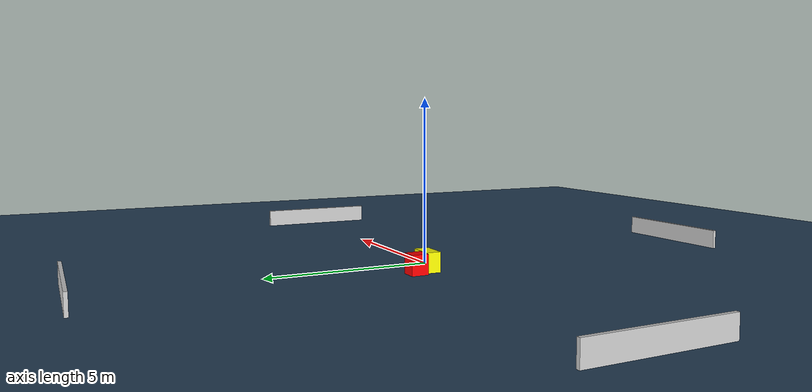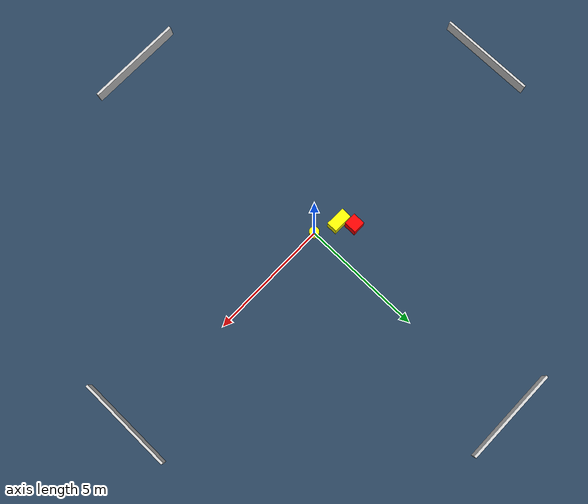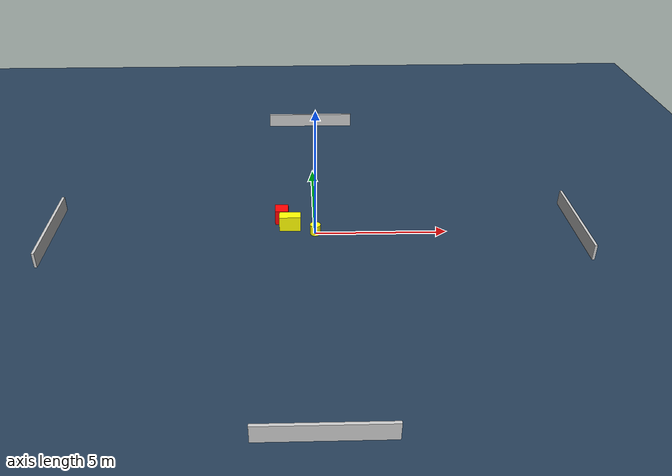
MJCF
<?xml version="1.0" ?>
<mujoco model="generated_environment">
  <option timestep="0.01" integrator="RK4" cone="elliptic"/>
  <default>
    <geom density="1"/>
  </default>
  <asset>
    <texture builtin="gradient" height="3072" name="skybox" rgb1="0.3 0.5 0.7" rgb2="0 0 0" type="skybox" width="512"/>
    <texture builtin="checker" height="300" name="groundplane" rgb1="0.2 0.3 0.4" rgb2="0.1 0.2 0.3" type="2d" width="300"/>
    <material name="groundplane" reflectance="0.2" texrepeat="5 5" texture="groundplane"/>
  </asset>
  <worldbody>
    <light dir="0 0 -1" directional="true" pos="0 0 1.5"/>
    <geom condim="3" friction="0.5 0.005 0.001" material="groundplane" name="floor" pos="0 0 0" size="0 0 0.05" type="plane"/>
    <body name="walls">
      <geom name="wall_1" condim="4" pos="-10.0 0.0 0.3" rgba="0.800000011920929 0.800000011920929 0.800000011920929 1.0" size="0.05 2.0 0.3" type="box"/>
      <geom name="wall_2" condim="4" pos="10.0 0.0 0.3" rgba="0.800000011920929 0.800000011920929 0.800000011920929 1.0" size="0.05 2.0 0.3" type="box"/>
      <geom name="wall_3" condim="4" pos="0.0 -10.0 0.3" rgba="0.800000011920929 0.800000011920929 0.800000011920929 1.0" size="2.0 0.05 0.3" type="box"/>
      <geom name="wall_4" condim="4" pos="0.0 10.0 0.3" rgba="0.800000011920929 0.800000011920929 0.800000011920929 1.0" size="2.0 0.05 0.3" type="box"/>
    </body>
    <body name="robot">
      <joint name="joint_x" type="slide" pos="0 0 0" axis="1 0 0"/>
      <joint name="joint_y" type="slide" pos="0 0 0" axis="0 1 0"/>
      <geom name="robot" type="cylinder" pos="0.0 0.0 0.2" size="0.2 0.2 0.0" mass="5.0" friction="1.0 0.005 0.0001" condim="4" rgba="1.0 1.0 0.0 1.0"/>
    </body>
    <body name="obstacle_1_movable">
      <geom name="obstacle_1_movable" condim="4" pos="-0.9623021685881361 0.39991013962562566 0.3" euler="0 0 358.89938731257274" friction="0.0 0.005 0.001" rgba="1.0 1.0 0.0 1.0" size="0.4081876572138747 0.2188287870072878 0.3" type="box" mass="0.1"/>
      <joint type="free"/>
    </body>
    <body name="obstacle_2_static">
      <geom name="obstacle_2_static" condim="4" pos="-1.2850728207113282 0.913957301991976 0.3" euler="0 0 359.83861397290804" friction="0.0 0.005 0.001" rgba="1.0 0.0 0.0 1.0" size="0.25523393378376524 0.2564607332246705 0.3" type="box"/>
    </body>
  </worldbody>
  <actuator>
    <motor name="actuator_x" joint="joint_x" gear="1" ctrlrange="-1 1"/>
    <motor name="actuator_y" joint="joint_y" gear="1" ctrlrange="-1 1"/>
  </actuator>
</mujoco>
